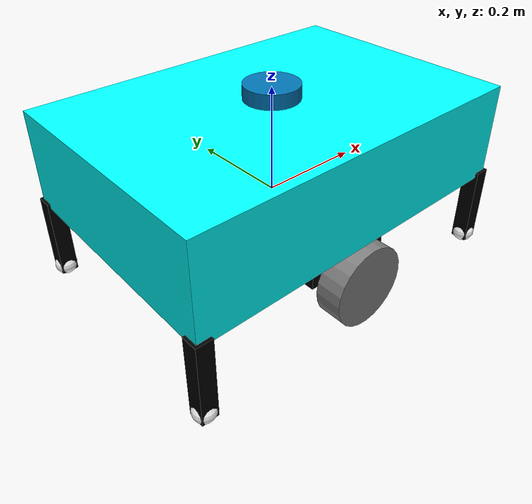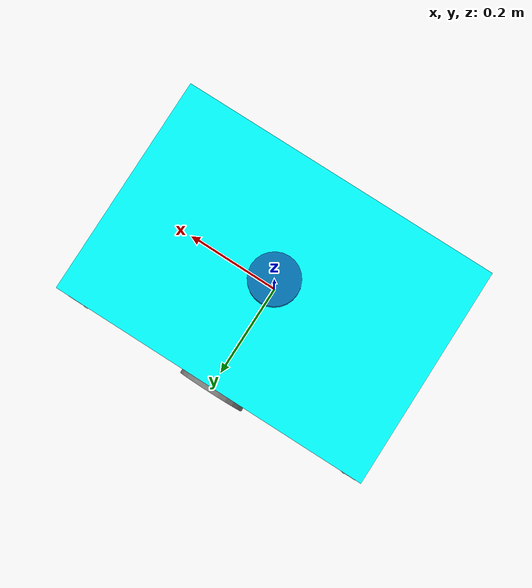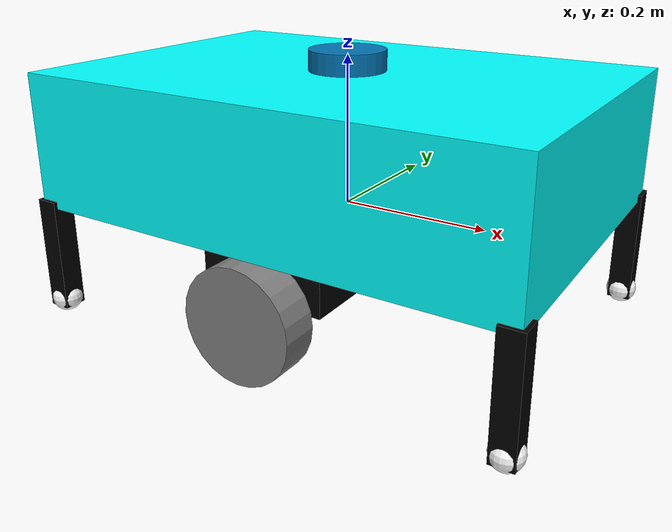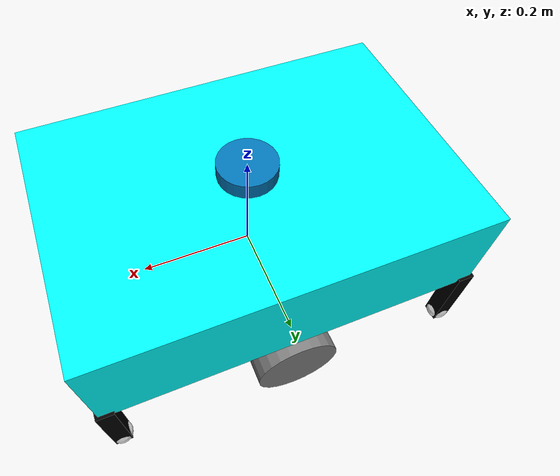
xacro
<?xml version = "1.0" ?>
<robot name="diff_robot" xmlns:xacro="http://ros.org/wiki/xacro">

<xacro:property name="body_width" value = "0.44"/>
<xacro:property name="body_length" value = "0.65"/>
<xacro:property name="body_height" value = "0.18"/>

<xacro:property name="wheel_radius" value="0.075"/>
<xacro:property name="wheel_width" value="0.05"/>
<xacro:property name="wheel_r_cas" value="0.02"/>
<xacro:property name="z_off" value="0.08"/>

<!-- Define intertial property macros  -->
<xacro:macro name="box_inertia" params="m w h d">
<inertial>
    <origin xyz="0 0 0" rpy="${pi/2} 0 ${pi/2}"/>
    <mass value="${m}"/>
    <inertia ixx="${(m/12) * (h*h + d*d)}" ixy="0.0" ixz="0.0" iyy="${(m/12) * (w*w + d*d)}" iyz="0.0" izz="${(m/12) * (w*w + h*h)}"/>
</inertial>
</xacro:macro>

<xacro:macro name="cylinder_inertia" params="m r h">
<inertial>
    <origin xyz="0 0 0" rpy="${pi/2} 0 0" />
    <mass value="${m}"/>
    <inertia ixx="${(m/12) * (3*r*r + h*h)}" ixy = "0" ixz = "0" iyy="${(m/12) * (3*r*r + h*h)}" iyz = "0" izz="${(m/2) * (r*r)}"/>
</inertial>
</xacro:macro>

<xacro:macro name="sphere_inertia" params="m r">
<inertial>
    <mass value="${m}"/>
    <inertia ixx="${(2/5) * m * (r*r)}" ixy="0.0" ixz="0.0" iyy="${(2/5) * m * (r*r)}" iyz="0.0" izz="${(2/5) * m * (r*r)}"/>
</inertial>
</xacro:macro>

<!-- Robot body -->
<link name="base_link">
    <visual>
        <origin xyz="0 0 ${body_height/2}" rpy="0 0 0"/>
        <geometry>
            <box size="${body_length +0.02} ${body_width+0.02} ${body_height}"/>
        </geometry>
        <material name="Cyan">
            <color rgba="0 1.0 1.0 1.0"/>
        </material>
    </visual>
    <collision>
    <origin xyz="0 0 ${body_height/2}" rpy="0 0 0"/>
        <geometry>
            <box size="${body_length} ${body_width} ${body_height+z_off}"/>
        </geometry>
    </collision>

    <xacro:box_inertia m="20" w="${body_width}" d="${body_length}" h="${body_height}"/>
</link>
<link name="motor_link">
    <visual>
        <geometry>
            <box size="0.17 ${body_width - wheel_width} ${wheel_radius}"/>
        </geometry>
        <material name="black">
            <color rgba="0 0.0 0.0 1.0"/>
        </material>
    </visual>
    <collision>
        <geometry>
            <box size="0.17 ${body_width - wheel_width} ${wheel_radius}"/>
        </geometry>
    </collision>

    <xacro:box_inertia m="10" w="0.17" d="${body_width - wheel_width}" h="${wheel_radius}"/>
</link>

<joint name="motor_joint" type="fixed">
    <parent link = "base_link"/>
    <child link = "motor_link"/>
    <origin xyz = "0 0 -0.03 " rpy = "0 0 0"/>
</joint>

<!-- Caster Wheel -->
<xacro:macro name="cast_wheel" params="prefix x_reflect y_reflect">
    <link name="${prefix}_link">
    <visual>
        <geometry>
            <sphere radius="${wheel_r_cas}"/>
        </geometry>
        <material name="white">
            <color rgba="1 1.0 1.0 1.0"/>
        </material>
    </visual>
    <collision>
        <origin xyz="0 0 0" rpy="0 0 0"/>
        <geometry>
            <sphere radius="${wheel_r_cas}"/>
        </geometry>
    </collision>

    <xacro:sphere_inertia m="1.0" r="${wheel_r_cas}"/>
    </link>

    <joint name="${prefix}_joint" type="fixed">
        <parent link="base_link"/>
        <child link="${prefix}_link"/>
        <origin xyz="${-x_reflect*(body_length/2)} ${y_reflect*(body_width/2)} -${z_off+wheel_radius-wheel_r_cas}" rpy="0 0 0"/>
    </joint>

<link name="${prefix}_tobaselink">
    <visual>
        <geometry>
            <box size="0.03 0.03 ${z_off+wheel_radius}"/>
        </geometry>
        <material name="black">
            <color rgba="0 0.0 0.0 1.0"/>
        </material>
    </visual>
    <collision>
        <geometry>
            <box size="0.03 0.03 ${z_off+wheel_radius}"/>
        </geometry>
    </collision>

    <xacro:box_inertia m="1" w="0.03" d="0.03" h="${z_off+wheel_radius}"/>
</link>
    <joint name="${prefix}_tobasejoint" type="fixed">
        <parent link="base_link"/>
        <child link="${prefix}_tobaselink"/>
        <origin xyz="${-x_reflect*(body_length/2)} ${y_reflect*(body_width/2)} -${(z_off+wheel_radius-wheel_r_cas)/2}" rpy="0 0 0"/>
    </joint>
</xacro:macro>

<xacro:cast_wheel prefix="cast1" x_reflect="1" y_reflect="1"/>
<xacro:cast_wheel prefix="cast2" x_reflect="-1" y_reflect="1"/>
<xacro:cast_wheel prefix="cast3" x_reflect="-1" y_reflect="-1"/>
<xacro:cast_wheel prefix="cast4" x_reflect="1" y_reflect="-1"/>

<!-- Wheels -->
<xacro:macro name="wheel" params="prefix dir y_reflect">
<link name="${prefix}_link">
    <visual>
    <origin xyz="0 0 0" rpy="0 0 0"/>
    <geometry>
        <cylinder radius="${wheel_radius}" length="${wheel_width}"/>
    </geometry>
    <material name="Gray">
        <color rgba="0.5 0.5 0.5 1.0"/>
    </material>
    </visual>
    <collision>
    <origin xyz="0 0 0" rpy="0 0 0"/>
    <geometry>
        <cylinder radius="${wheel_radius}" length="${wheel_width}"/>
    </geometry>
    </collision>

    <xacro:cylinder_inertia m="2" r="${wheel_radius}" h="${wheel_width}"/>
</link>

<joint name="${prefix}_joint" type="continuous">
    <parent link="base_link"/>
    <child link="${prefix}_link"/>
    <origin xyz="0 ${y_reflect*(body_width/2)} -${z_off}" rpy="${-pi/2*dir} 0 0"/>
    <axis xyz="0 0 ${dir} "/>
</joint>
</xacro:macro>

<xacro:wheel prefix="left_wheel" dir=" 1" y_reflect="1"/>
<xacro:wheel prefix="right_wheel" dir="-1" y_reflect="-1"/>

  <!-- Lidar link -->
  <link name="lidar_link">
    <inertial>
      <origin xyz="0 0 0" rpy="0 0 0"/>
      <mass value="0.125"/>
      <inertia ixx="0.001" ixy="0.000" ixz="0.000"
               iyy="0.001" iyz="0.000" izz="0.001"/>
    </inertial>
    <collision name="lidar_sensor_collision">
      <origin xyz="0 0 0" rpy="0 0 0"/>
      <geometry>
        <cylinder radius="0.0508" length="0.055"/>
      </geometry>
    </collision>
    <visual name="lidar_sensor_visual">
      <origin xyz="0 0 0" rpy="0 0 0"/>
      <geometry>
        <cylinder radius="0.0508" length="0.055"/>
      </geometry>
    </visual>
  </link>

  <joint name="lidar_joint" type="fixed">
    <parent link="base_link"/>
    <child link="lidar_link"/>
    <origin xyz="0 0 ${body_height}" rpy="0 0 0"/>
  </joint>

 <ros2_control name="imu_sensor" type="sensor">
  <hardware>
    <plugin>imu_hardware_interface/HwtImuInterface</plugin>
    <param name="port">/dev/ttyUSB0</param>
    <param name="baudrate">115200</param>
    <param name="slaveID">80</param>

  </hardware>
  <sensor name="imu" type="imu_sensor">
    <state_interface name="orientation.x"/>
    <state_interface name="orientation.y"/>
    <state_interface name="orientation.z"/>
    <state_interface name="orientation.w"/>
    <state_interface name="angular_velocity.x"/>
    <state_interface name="angular_velocity.y"/>
    <state_interface name="angular_velocity.z"/>
    <state_interface name="linear_acceleration.x"/>
    <state_interface name="linear_acceleration.y"/>
    <state_interface name="linear_acceleration.z"/>
  </sensor>
    <sensor name="imu2" type="imu_sensor">
    <state_interface name="orientation.x"/>
    <state_interface name="orientation.y"/>
    <state_interface name="orientation.z"/>
    <state_interface name="orientation.w"/>
    <state_interface name="angular_velocity.x"/>
    <state_interface name="angular_velocity.y"/>
    <state_interface name="angular_velocity.z"/>
    <state_interface name="linear_acceleration.x"/>
    <state_interface name="linear_acceleration.y"/>
    <state_interface name="linear_acceleration.z"/>
  </sensor>

</ros2_control>

    <!-- control  -->
    <ros2_control name="diff_drive" type="system">
      <hardware>
        <!--control manager read xml file and tranfer param for harware interface (hardwareiterface::HardwareInfor info)  -->
        <plugin>diff_hardware_interface/DiffDrivewareInterface</plugin>
        <!-- param "left_wheel_name" has value "left_wheel_joint" -->
        <param name="left_wheel_name">left_wheel_joint</param>
        <param name="right_wheel_name">right_wheel_joint</param>
        <param name="idLeft">2</param>
        <param name="idRight">3</param>
        <param name="rWheel">0.075</param>
        <param name="widthRobot">0.48</param>
        <param name="canPort">slcan0</param>
      </hardware>
      <!-- joint name have same name in xacrofile same name(state_interface) to broadcaster joint correct  -->
      <joint name="left_wheel_joint">
        <command_interface name="velocity"/>
        <state_interface name="position"/>
        <state_interface name="velocity"/>
      </joint>
      <joint name="right_wheel_joint">
        <command_interface name="velocity"/>
        <state_interface name="position"/>
        <state_interface name="velocity"/>
      </joint>
    </ros2_control>
</robot>
